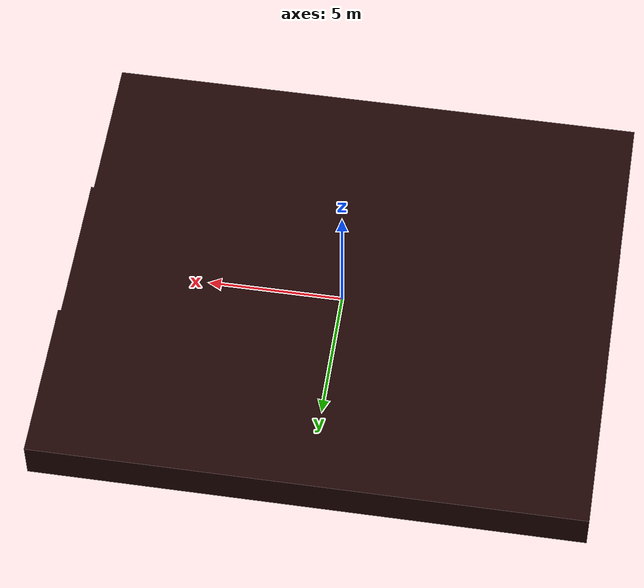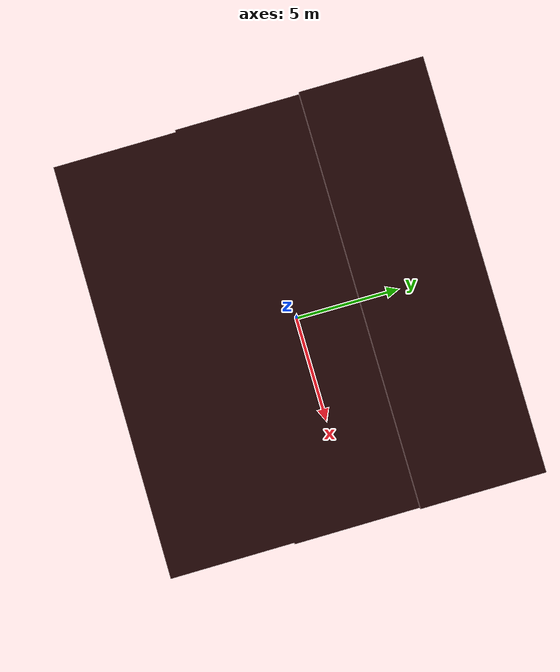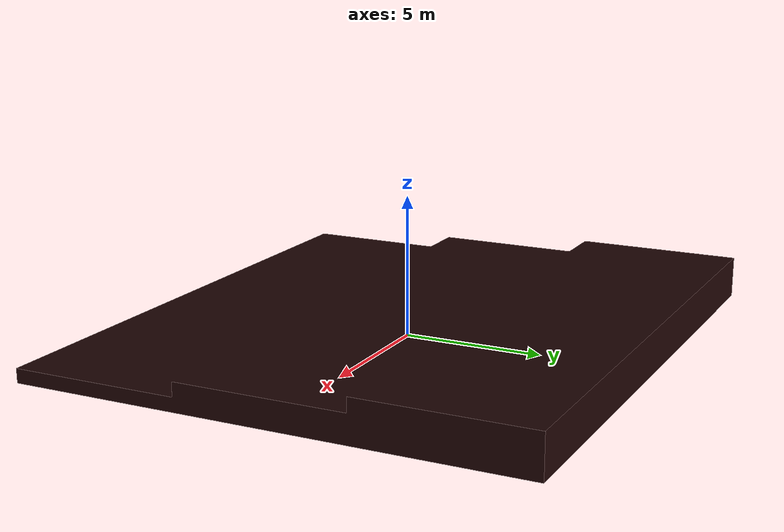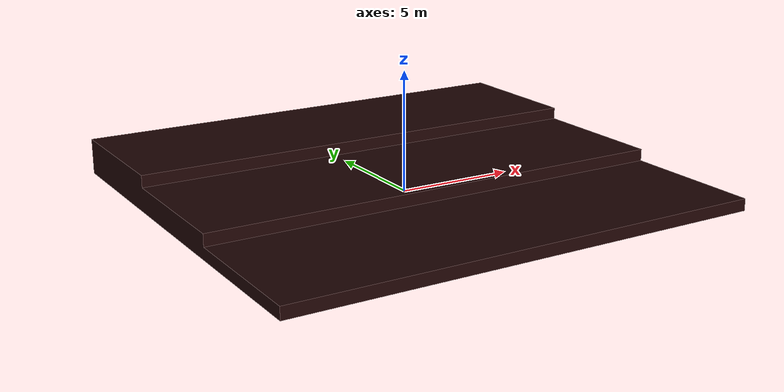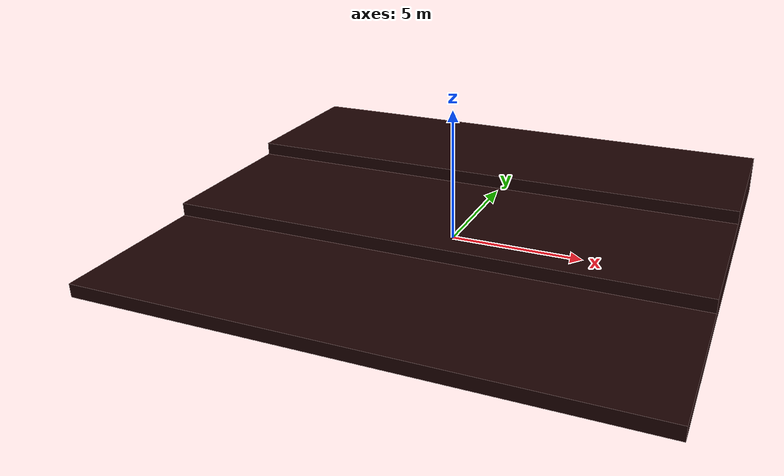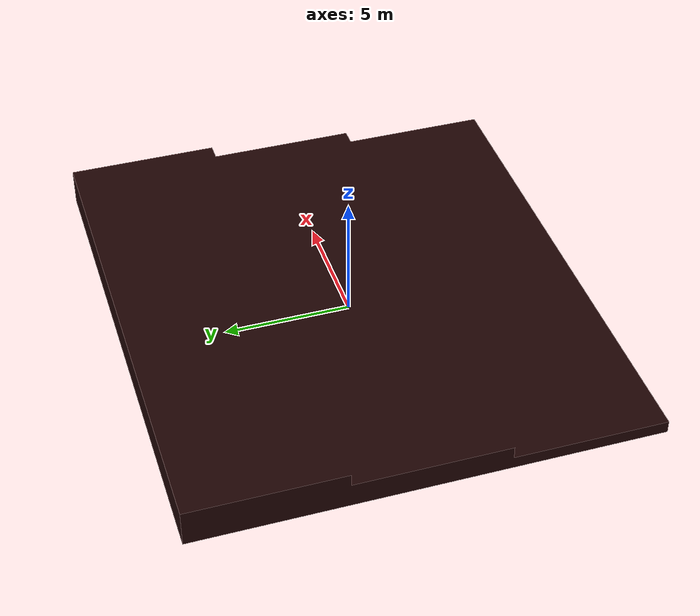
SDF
<?xml version='1.0' ?>
<sdf version="1.6">
    <model name="stadium">
        <static>true</static>
        <link name="link">
            <collision name="collision">
                <pose>0 0 0 0 0 0</pose>
                <geometry>
                    <mesh>
                        <uri>stadium.dae</uri>
                    </mesh>
                </geometry>
            </collision>
            <visual name="visual">
                <pose>0 0 0 0 0 0</pose>
                <geometry>
                    <mesh>
                        <uri>stadium.dae</uri>
                    </mesh>
                </geometry>
            </visual>
        </link>
    </model>
</sdf>
